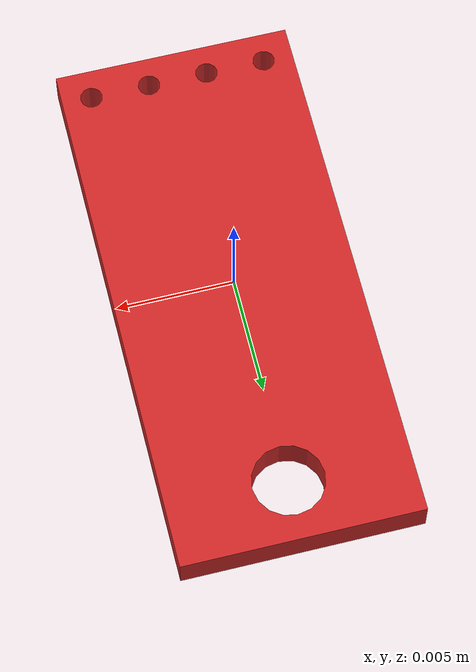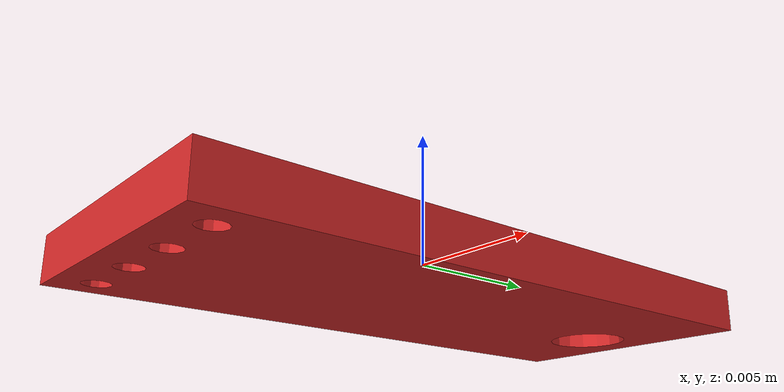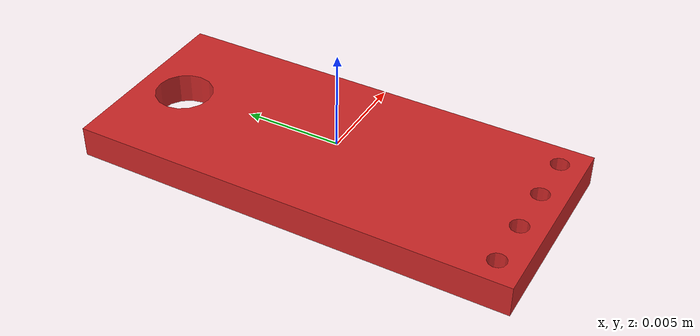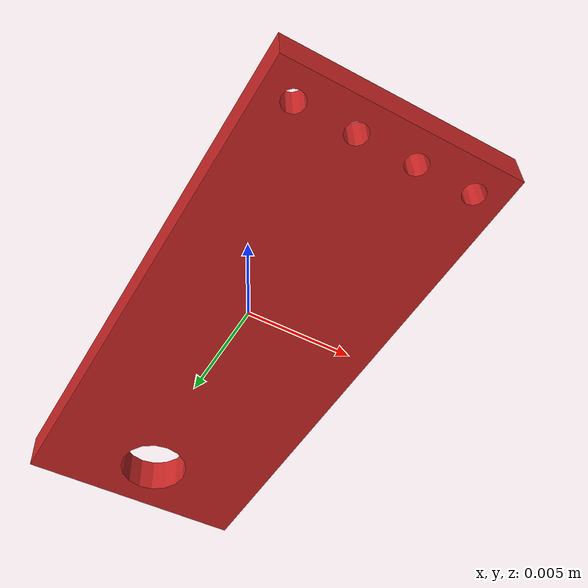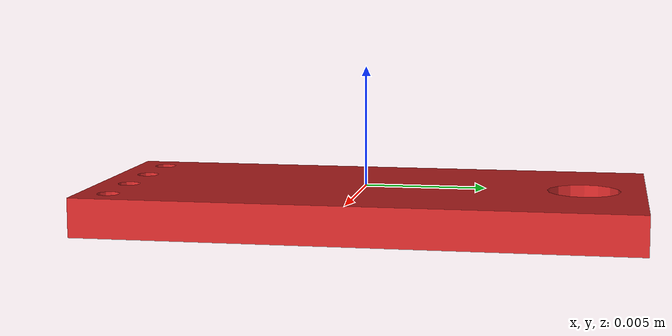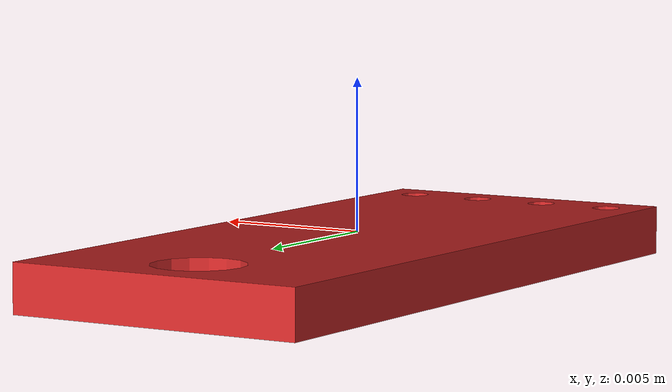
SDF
<?xml version='1.0'?>
<sdf version='1.6'>
  <model name='grudsby_imu'>
    <link name='base_link_sim'>
      <pose frame=''>0 0 0 0 0 0</pose>

      <inertial>
        <mass>0.000001</mass>
        <inertia>
          <ixx>0</ixx>
          <ixy>0</ixy>
          <ixz>0</ixz>
          <iyy>0</iyy>
          <iyz>0</iyz>
          <izz>0</izz>
        </inertia>
        <pose frame=''>0 0 0 0 -0 0</pose>
      </inertial>

      <visual name='visual'>
        <pose frame=''>0 0 0 0 -0 0</pose>
        <geometry>
          <mesh>
            <uri>model://grudsby_imu/meshes/grudsby_imu.STL</uri>
          </mesh>
        </geometry>
        <material>
          <lighting>1</lighting>
          <script>
            <uri>file://media/materials/scripts/gazebo.material</uri>
            <name>Gazebo/Red</name>
          </script>
          <shader type='vertex'>
            <normal_map>__default__</normal_map>
          </shader>
        </material>
        <cast_shadows>1</cast_shadows>
        <transparency>0</transparency>
      </visual>

      <collision name='collision'>
        <max_contacts>10</max_contacts>
        <pose frame=''>0 0 0 0 -0 0</pose>
        <geometry>
          <mesh>
            <uri>model://grudsby_imu/meshes/grudsby_imu.STL</uri>
          </mesh>
        </geometry>
      </collision>
    </link>

      <plugin name="imu_plugin" filename="libhector_gazebo_ros_imu.so">
	      <alwaysOn>true</alwaysOn>
	      <bodyName>base_link_sim</bodyName>
	      <topicName>imu/data_sim</topicName>
	      <serviceName>imu_service</serviceName>
	      <gaussianNoise>0.0</gaussianNoise>
	      <updateRate>50.0</updateRate>
      </plugin>
      <plugin name="mag_plugin" filename="libhector_gazebo_ros_magnetic.so">
              <alwaysOn>true</alwaysOn>
              <bodyName>base_link_sim</bodyName>
              <topicName>mag</topicName>
              <serviceName>mag_service</serviceName>
              <declination>-28.6479</declination>
              <updateRate>50.0</updateRate>
      </plugin>

    <static>0</static>
    <allow_auto_disable>1</allow_auto_disable>
  </model>
</sdf>
